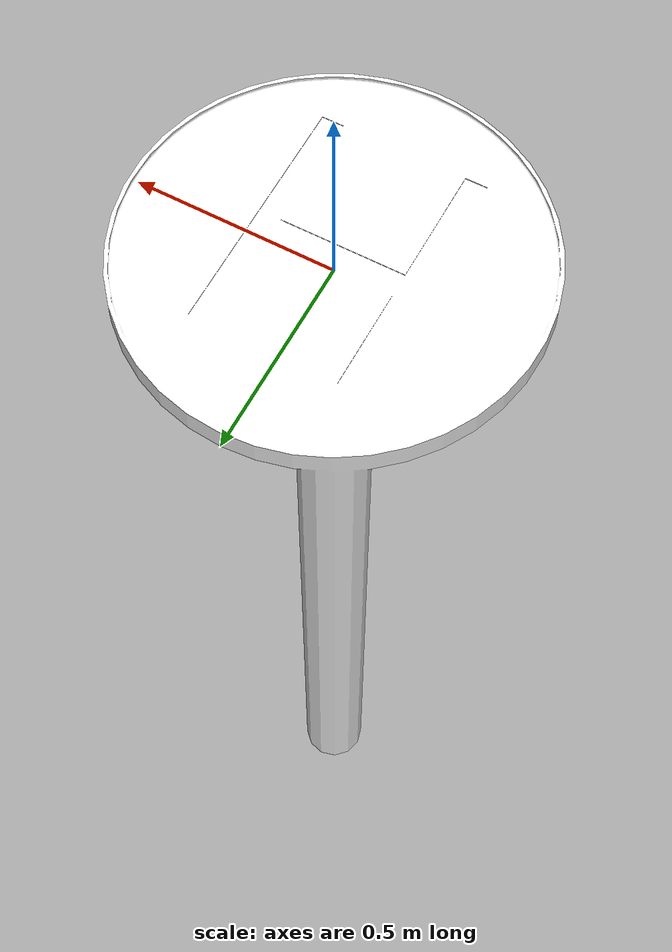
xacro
<?xml version="1.0" encoding="utf-8"?>
<robot name="vmpad" xmlns:xacro="http://www.ros.org/wiki/xacro">
  <link name="vmpad_base">
    <inertial>
      <origin
        xyz="4.0487E-06 -1.0501 -2.4134E-05"
        rpy="0 0 0" />
      <mass
        value="189.82" />
      <inertia
        ixx="104.26"
        ixy="-1.8333E-05"
        ixz="-1.4901E-05"
        iyy="7.7413"
        iyz="0.00010928"
        izz="104.26" />
    </inertial>
    <visual>
      <origin
        xyz="0 0 0"
        rpy="0 0 0" />
      <geometry>
        <mesh
          filename="package://viman_visualize/meshes/vmpad_base.STL" />
      </geometry>
      <material
        name="">
        <color
          rgba="1 1 1 1" />
      </material>
    </visual>
    <collision>
      <origin
        xyz="0 0 0"
        rpy="0 0 0" />
      <geometry>
        <mesh
          filename="package://viman_visualize/meshes/vmpad_base.STL" />
      </geometry>
    </collision>
  </link>

  <gazebo reference="vmpad_base">
	  <material>Gazebo/Grey</material>
  </gazebo>

  <gazebo>
	  <static>true</static>
  </gazebo>

</robot>
